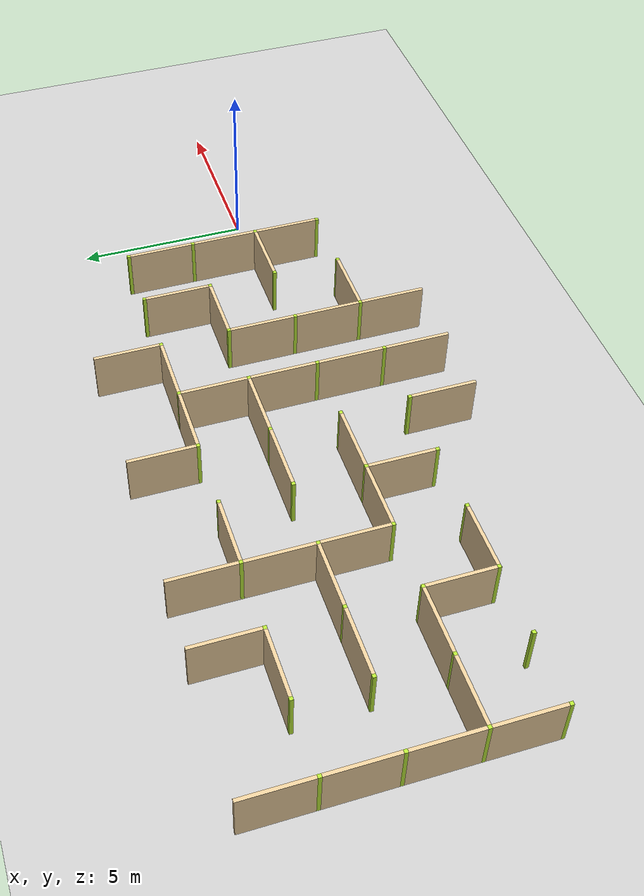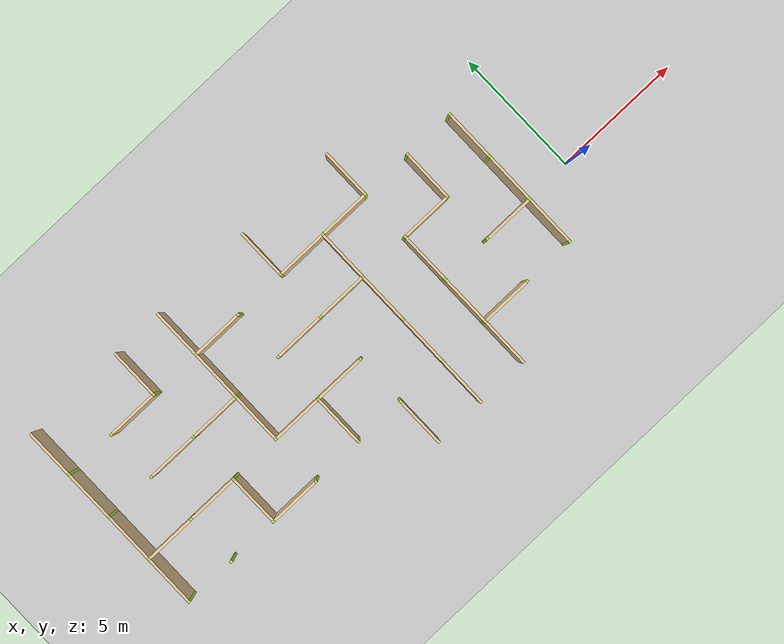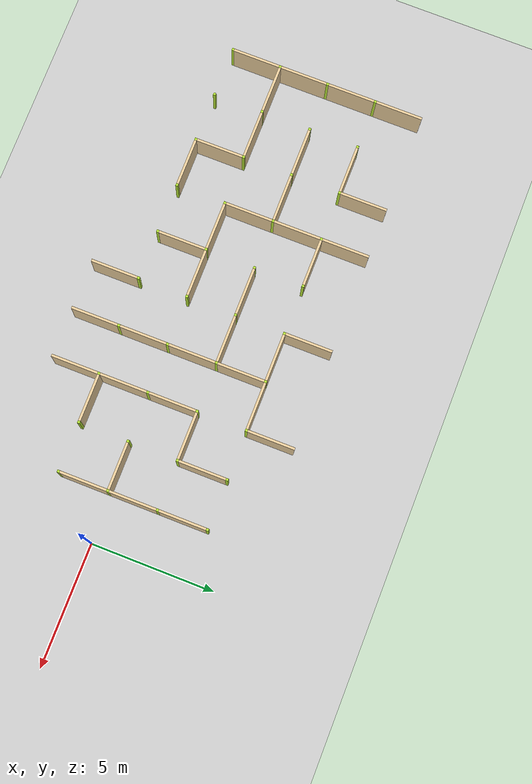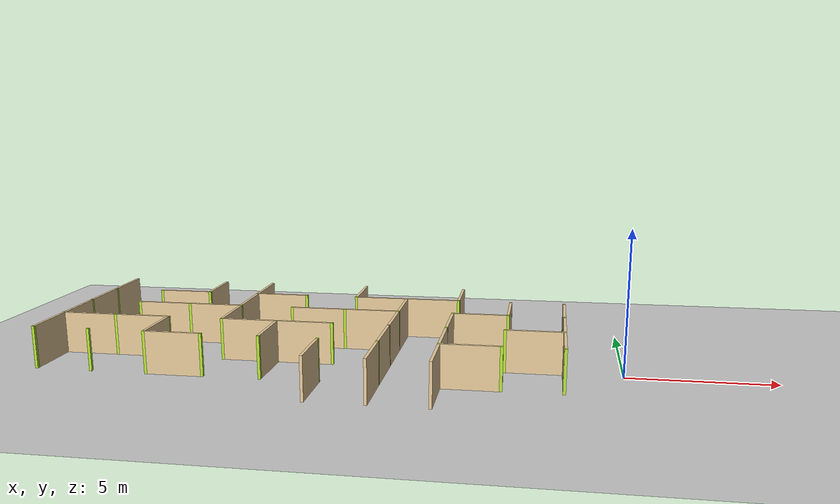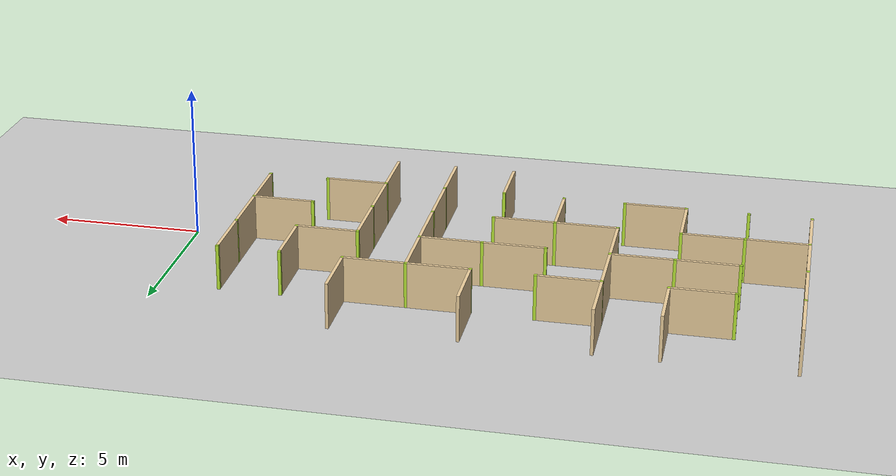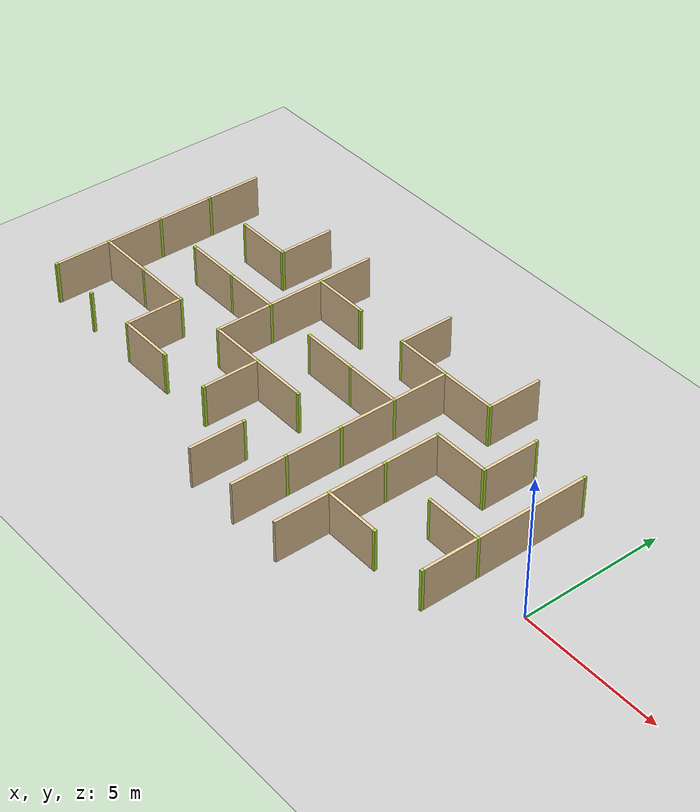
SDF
<sdf version="1.4">
 <world name="maze_world">
  <model name="ground">
   <static>true</static>
   <link name="ground_link">
    <collision name="collision1"><geometry><plane><normal>0 0 1</normal></plane></geometry></collision>
    <visual name="visual1"><geometry><plane><normal>0 0 1</normal><size>100 100</size></plane></geometry></visual>
   </link>
  </model>
  <model name="Untitled">
   <link name="Wall_0_7_v">
    <collision name="Wall_0_Collision">
     <geometry><box><size>1.9 0.1 1.5</size></box></geometry>
     <pose>0 0 0.75 0 -0 0</pose>
    </collision>
    <visual name="Wall_0_Visual">
     <pose>0 0 0.75 0 -0 0</pose>
     <geometry><box><size>1.9 0.1 1.5</size></box></geometry>
     <material>
      <script><uri>file://media/materials/scripts/gazebo.material</uri><name>Gazebo/Grey</name></script>
      <ambient>0.921569 0.807843 0.615686 1</ambient>
     </material>
     <meta><layer>0</layer></meta>
    </visual>
    <pose>-20 5.0 0 0 -0 1.5708</pose>
   </link>
   <link name="Wall_2_7_v">
    <collision name="Wall_0_Collision">
     <geometry><box><size>1.9 0.1 1.5</size></box></geometry>
     <pose>0 0 0.75 0 -0 0</pose>
    </collision>
    <visual name="Wall_0_Visual">
     <pose>0 0 0.75 0 -0 0</pose>
     <geometry><box><size>1.9 0.1 1.5</size></box></geometry>
     <material>
      <script><uri>file://media/materials/scripts/gazebo.material</uri><name>Gazebo/Grey</name></script>
      <ambient>0.921569 0.807843 0.615686 1</ambient>
     </material>
     <meta><layer>0</layer></meta>
    </visual>
    <pose>-16 5.0 0 0 -0 1.5708</pose>
   </link>
   <link name="Wall_3_7_v">
    <collision name="Wall_0_Collision">
     <geometry><box><size>1.9 0.1 1.5</size></box></geometry>
     <pose>0 0 0.75 0 -0 0</pose>
    </collision>
    <visual name="Wall_0_Visual">
     <pose>0 0 0.75 0 -0 0</pose>
     <geometry><box><size>1.9 0.1 1.5</size></box></geometry>
     <material>
      <script><uri>file://media/materials/scripts/gazebo.material</uri><name>Gazebo/Grey</name></script>
      <ambient>0.921569 0.807843 0.615686 1</ambient>
     </material>
     <meta><layer>0</layer></meta>
    </visual>
    <pose>-14 5.0 0 0 -0 1.5708</pose>
   </link>
   <link name="Wall_5_7_v">
    <collision name="Wall_0_Collision">
     <geometry><box><size>1.9 0.1 1.5</size></box></geometry>
     <pose>0 0 0.75 0 -0 0</pose>
    </collision>
    <visual name="Wall_0_Visual">
     <pose>0 0 0.75 0 -0 0</pose>
     <geometry><box><size>1.9 0.1 1.5</size></box></geometry>
     <material>
      <script><uri>file://media/materials/scripts/gazebo.material</uri><name>Gazebo/Grey</name></script>
      <ambient>0.921569 0.807843 0.615686 1</ambient>
     </material>
     <meta><layer>0</layer></meta>
    </visual>
    <pose>-10 5.0 0 0 -0 1.5708</pose>
   </link>
   <link name="Wall_7_7_v">
    <collision name="Wall_0_Collision">
     <geometry><box><size>1.9 0.1 1.5</size></box></geometry>
     <pose>0 0 0.75 0 -0 0</pose>
    </collision>
    <visual name="Wall_0_Visual">
     <pose>0 0 0.75 0 -0 0</pose>
     <geometry><box><size>1.9 0.1 1.5</size></box></geometry>
     <material>
      <script><uri>file://media/materials/scripts/gazebo.material</uri><name>Gazebo/Grey</name></script>
      <ambient>0.921569 0.807843 0.615686 1</ambient>
     </material>
     <meta><layer>0</layer></meta>
    </visual>
    <pose>-6 5.0 0 0 -0 1.5708</pose>
   </link>
   <link name="Wall_0_8_v">
    <collision name="Wall_0_Collision">
     <geometry><box><size>1.9 0.1 1.5</size></box></geometry>
     <pose>0 0 0.75 0 -0 0</pose>
    </collision>
    <visual name="Wall_0_Visual">
     <pose>0 0 0.75 0 -0 0</pose>
     <geometry><box><size>1.9 0.1 1.5</size></box></geometry>
     <material>
      <script><uri>file://media/materials/scripts/gazebo.material</uri><name>Gazebo/Grey</name></script>
      <ambient>0.921569 0.807843 0.615686 1</ambient>
     </material>
     <meta><layer>0</layer></meta>
    </visual>
    <pose>-20 3.0 0 0 -0 1.5708</pose>
   </link>
   <link name="Joint_-20_4">
    <collision name="Wall_2_Collision">
     <geometry><box><size>0.1 0.1 1.5</size></box></geometry>
     <pose>0 0 0.75 0 -0 0</pose>
    </collision>
    <visual name="Wall_2_Visual">
     <pose>0 0 0.75 0 -0 0</pose>
     <geometry><box><size>0.1 0.1 1.5</size></box></geometry>
     <material>
      <script><uri>file://media/materials/scripts/gazebo.material</uri><name>Gazebo/Grey</name></script>
      <ambient>0.721569 0.907843 0.215686 1</ambient>
     </material>
     <meta><layer>0</layer></meta>
    </visual>
    <pose>-20 4 0 0 -0 0</pose>
   </link>
   <link name="Wall_1_8_h">
    <collision name="Wall_0_Collision">
     <geometry><box><size>1.9 0.1 1.5</size></box></geometry>
     <pose>0 0 0.75 0 -0 0</pose>
    </collision>
    <visual name="Wall_0_Visual">
     <pose>0 0 0.75 0 -0 0</pose>
     <geometry><box><size>1.9 0.1 1.5</size></box></geometry>
     <material>
      <script><uri>file://media/materials/scripts/gazebo.material</uri><name>Gazebo/Grey</name></script>
      <ambient>0.921569 0.807843 0.615686 1</ambient>
     </material>
     <meta><layer>0</layer></meta>
    </visual>
    <pose>-17.0 4 0 0 -0 0</pose>
   </link>
   <link name="Joint_-18_4">
    <collision name="Wall_2_Collision">
     <geometry><box><size>0.1 0.1 1.5</size></box></geometry>
     <pose>0 0 0.75 0 -0 0</pose>
    </collision>
    <visual name="Wall_2_Visual">
     <pose>0 0 0.75 0 -0 0</pose>
     <geometry><box><size>0.1 0.1 1.5</size></box></geometry>
     <material>
      <script><uri>file://media/materials/scripts/gazebo.material</uri><name>Gazebo/Grey</name></script>
      <ambient>0.721569 0.907843 0.215686 1</ambient>
     </material>
     <meta><layer>0</layer></meta>
    </visual>
    <pose>-18 4 0 0 -0 0</pose>
   </link>
   <link name="Joint_-16_4">
    <collision name="Wall_2_Collision">
     <geometry><box><size>0.1 0.1 1.5</size></box></geometry>
     <pose>0 0 0.75 0 -0 0</pose>
    </collision>
    <visual name="Wall_2_Visual">
     <pose>0 0 0.75 0 -0 0</pose>
     <geometry><box><size>0.1 0.1 1.5</size></box></geometry>
     <material>
      <script><uri>file://media/materials/scripts/gazebo.material</uri><name>Gazebo/Grey</name></script>
      <ambient>0.721569 0.907843 0.215686 1</ambient>
     </material>
     <meta><layer>0</layer></meta>
    </visual>
    <pose>-16 4 0 0 -0 0</pose>
   </link>
   <link name="Wall_3_8_h">
    <collision name="Wall_0_Collision">
     <geometry><box><size>1.9 0.1 1.5</size></box></geometry>
     <pose>0 0 0.75 0 -0 0</pose>
    </collision>
    <visual name="Wall_0_Visual">
     <pose>0 0 0.75 0 -0 0</pose>
     <geometry><box><size>1.9 0.1 1.5</size></box></geometry>
     <material>
      <script><uri>file://media/materials/scripts/gazebo.material</uri><name>Gazebo/Grey</name></script>
      <ambient>0.921569 0.807843 0.615686 1</ambient>
     </material>
     <meta><layer>0</layer></meta>
    </visual>
    <pose>-13.0 4 0 0 -0 0</pose>
   </link>
   <link name="Wall_3_8_v">
    <collision name="Wall_0_Collision">
     <geometry><box><size>1.9 0.1 1.5</size></box></geometry>
     <pose>0 0 0.75 0 -0 0</pose>
    </collision>
    <visual name="Wall_0_Visual">
     <pose>0 0 0.75 0 -0 0</pose>
     <geometry><box><size>1.9 0.1 1.5</size></box></geometry>
     <material>
      <script><uri>file://media/materials/scripts/gazebo.material</uri><name>Gazebo/Grey</name></script>
      <ambient>0.921569 0.807843 0.615686 1</ambient>
     </material>
     <meta><layer>0</layer></meta>
    </visual>
    <pose>-14 3.0 0 0 -0 1.5708</pose>
   </link>
   <link name="Joint_-14_4">
    <collision name="Wall_2_Collision">
     <geometry><box><size>0.1 0.1 1.5</size></box></geometry>
     <pose>0 0 0.75 0 -0 0</pose>
    </collision>
    <visual name="Wall_2_Visual">
     <pose>0 0 0.75 0 -0 0</pose>
     <geometry><box><size>0.1 0.1 1.5</size></box></geometry>
     <material>
      <script><uri>file://media/materials/scripts/gazebo.material</uri><name>Gazebo/Grey</name></script>
      <ambient>0.721569 0.907843 0.215686 1</ambient>
     </material>
     <meta><layer>0</layer></meta>
    </visual>
    <pose>-14 4 0 0 -0 0</pose>
   </link>
   <link name="Joint_-12_4">
    <collision name="Wall_2_Collision">
     <geometry><box><size>0.1 0.1 1.5</size></box></geometry>
     <pose>0 0 0.75 0 -0 0</pose>
    </collision>
    <visual name="Wall_2_Visual">
     <pose>0 0 0.75 0 -0 0</pose>
     <geometry><box><size>0.1 0.1 1.5</size></box></geometry>
     <material>
      <script><uri>file://media/materials/scripts/gazebo.material</uri><name>Gazebo/Grey</name></script>
      <ambient>0.721569 0.907843 0.215686 1</ambient>
     </material>
     <meta><layer>0</layer></meta>
    </visual>
    <pose>-12 4 0 0 -0 0</pose>
   </link>
   <link name="Wall_5_8_h">
    <collision name="Wall_0_Collision">
     <geometry><box><size>1.9 0.1 1.5</size></box></geometry>
     <pose>0 0 0.75 0 -0 0</pose>
    </collision>
    <visual name="Wall_0_Visual">
     <pose>0 0 0.75 0 -0 0</pose>
     <geometry><box><size>1.9 0.1 1.5</size></box></geometry>
     <material>
      <script><uri>file://media/materials/scripts/gazebo.material</uri><name>Gazebo/Grey</name></script>
      <ambient>0.921569 0.807843 0.615686 1</ambient>
     </material>
     <meta><layer>0</layer></meta>
    </visual>
    <pose>-9.0 4 0 0 -0 0</pose>
   </link>
   <link name="Joint_-10_4">
    <collision name="Wall_2_Collision">
     <geometry><box><size>0.1 0.1 1.5</size></box></geometry>
     <pose>0 0 0.75 0 -0 0</pose>
    </collision>
    <visual name="Wall_2_Visual">
     <pose>0 0 0.75 0 -0 0</pose>
     <geometry><box><size>0.1 0.1 1.5</size></box></geometry>
     <material>
      <script><uri>file://media/materials/scripts/gazebo.material</uri><name>Gazebo/Grey</name></script>
      <ambient>0.721569 0.907843 0.215686 1</ambient>
     </material>
     <meta><layer>0</layer></meta>
    </visual>
    <pose>-10 4 0 0 -0 0</pose>
   </link>
   <link name="Wall_6_8_h">
    <collision name="Wall_0_Collision">
     <geometry><box><size>1.9 0.1 1.5</size></box></geometry>
     <pose>0 0 0.75 0 -0 0</pose>
    </collision>
    <visual name="Wall_0_Visual">
     <pose>0 0 0.75 0 -0 0</pose>
     <geometry><box><size>1.9 0.1 1.5</size></box></geometry>
     <material>
      <script><uri>file://media/materials/scripts/gazebo.material</uri><name>Gazebo/Grey</name></script>
      <ambient>0.921569 0.807843 0.615686 1</ambient>
     </material>
     <meta><layer>0</layer></meta>
    </visual>
    <pose>-7.0 4 0 0 -0 0</pose>
   </link>
   <link name="Wall_6_8_v">
    <collision name="Wall_0_Collision">
     <geometry><box><size>1.9 0.1 1.5</size></box></geometry>
     <pose>0 0 0.75 0 -0 0</pose>
    </collision>
    <visual name="Wall_0_Visual">
     <pose>0 0 0.75 0 -0 0</pose>
     <geometry><box><size>1.9 0.1 1.5</size></box></geometry>
     <material>
      <script><uri>file://media/materials/scripts/gazebo.material</uri><name>Gazebo/Grey</name></script>
      <ambient>0.921569 0.807843 0.615686 1</ambient>
     </material>
     <meta><layer>0</layer></meta>
    </visual>
    <pose>-8 3.0 0 0 -0 1.5708</pose>
   </link>
   <link name="Joint_-8_4">
    <collision name="Wall_2_Collision">
     <geometry><box><size>0.1 0.1 1.5</size></box></geometry>
     <pose>0 0 0.75 0 -0 0</pose>
    </collision>
    <visual name="Wall_2_Visual">
     <pose>0 0 0.75 0 -0 0</pose>
     <geometry><box><size>0.1 0.1 1.5</size></box></geometry>
     <material>
      <script><uri>file://media/materials/scripts/gazebo.material</uri><name>Gazebo/Grey</name></script>
      <ambient>0.721569 0.907843 0.215686 1</ambient>
     </material>
     <meta><layer>0</layer></meta>
    </visual>
    <pose>-8 4 0 0 -0 0</pose>
   </link>
   <link name="Joint_-6_4">
    <collision name="Wall_2_Collision">
     <geometry><box><size>0.1 0.1 1.5</size></box></geometry>
     <pose>0 0 0.75 0 -0 0</pose>
    </collision>
    <visual name="Wall_2_Visual">
     <pose>0 0 0.75 0 -0 0</pose>
     <geometry><box><size>0.1 0.1 1.5</size></box></geometry>
     <material>
      <script><uri>file://media/materials/scripts/gazebo.material</uri><name>Gazebo/Grey</name></script>
      <ambient>0.721569 0.907843 0.215686 1</ambient>
     </material>
     <meta><layer>0</layer></meta>
    </visual>
    <pose>-6 4 0 0 -0 0</pose>
   </link>
   <link name="Wall_8_8_v">
    <collision name="Wall_0_Collision">
     <geometry><box><size>1.9 0.1 1.5</size></box></geometry>
     <pose>0 0 0.75 0 -0 0</pose>
    </collision>
    <visual name="Wall_0_Visual">
     <pose>0 0 0.75 0 -0 0</pose>
     <geometry><box><size>1.9 0.1 1.5</size></box></geometry>
     <material>
      <script><uri>file://media/materials/scripts/gazebo.material</uri><name>Gazebo/Grey</name></script>
      <ambient>0.921569 0.807843 0.615686 1</ambient>
     </material>
     <meta><layer>0</layer></meta>
    </visual>
    <pose>-4 3.0 0 0 -0 1.5708</pose>
   </link>
   <link name="Joint_-4_4">
    <collision name="Wall_2_Collision">
     <geometry><box><size>0.1 0.1 1.5</size></box></geometry>
     <pose>0 0 0.75 0 -0 0</pose>
    </collision>
    <visual name="Wall_2_Visual">
     <pose>0 0 0.75 0 -0 0</pose>
     <geometry><box><size>0.1 0.1 1.5</size></box></geometry>
     <material>
      <script><uri>file://media/materials/scripts/gazebo.material</uri><name>Gazebo/Grey</name></script>
      <ambient>0.721569 0.907843 0.215686 1</ambient>
     </material>
     <meta><layer>0</layer></meta>
    </visual>
    <pose>-4 4 0 0 -0 0</pose>
   </link>
   <link name="Wall_9_8_v">
    <collision name="Wall_0_Collision">
     <geometry><box><size>1.9 0.1 1.5</size></box></geometry>
     <pose>0 0 0.75 0 -0 0</pose>
    </collision>
    <visual name="Wall_0_Visual">
     <pose>0 0 0.75 0 -0 0</pose>
     <geometry><box><size>1.9 0.1 1.5</size></box></geometry>
     <material>
      <script><uri>file://media/materials/scripts/gazebo.material</uri><name>Gazebo/Grey</name></script>
      <ambient>0.921569 0.807843 0.615686 1</ambient>
     </material>
     <meta><layer>0</layer></meta>
    </visual>
    <pose>-2 3.0 0 0 -0 1.5708</pose>
   </link>
   <link name="Joint_-2_4">
    <collision name="Wall_2_Collision">
     <geometry><box><size>0.1 0.1 1.5</size></box></geometry>
     <pose>0 0 0.75 0 -0 0</pose>
    </collision>
    <visual name="Wall_2_Visual">
     <pose>0 0 0.75 0 -0 0</pose>
     <geometry><box><size>0.1 0.1 1.5</size></box></geometry>
     <material>
      <script><uri>file://media/materials/scripts/gazebo.material</uri><name>Gazebo/Grey</name></script>
      <ambient>0.721569 0.907843 0.215686 1</ambient>
     </material>
     <meta><layer>0</layer></meta>
    </visual>
    <pose>-2 4 0 0 -0 0</pose>
   </link>
   <link name="Wall_0_9_v">
    <collision name="Wall_0_Collision">
     <geometry><box><size>1.9 0.1 1.5</size></box></geometry>
     <pose>0 0 0.75 0 -0 0</pose>
    </collision>
    <visual name="Wall_0_Visual">
     <pose>0 0 0.75 0 -0 0</pose>
     <geometry><box><size>1.9 0.1 1.5</size></box></geometry>
     <material>
      <script><uri>file://media/materials/scripts/gazebo.material</uri><name>Gazebo/Grey</name></script>
      <ambient>0.921569 0.807843 0.615686 1</ambient>
     </material>
     <meta><layer>0</layer></meta>
    </visual>
    <pose>-20 1.0 0 0 -0 1.5708</pose>
   </link>
   <link name="Joint_-20_2">
    <collision name="Wall_2_Collision">
     <geometry><box><size>0.1 0.1 1.5</size></box></geometry>
     <pose>0 0 0.75 0 -0 0</pose>
    </collision>
    <visual name="Wall_2_Visual">
     <pose>0 0 0.75 0 -0 0</pose>
     <geometry><box><size>0.1 0.1 1.5</size></box></geometry>
     <material>
      <script><uri>file://media/materials/scripts/gazebo.material</uri><name>Gazebo/Grey</name></script>
      <ambient>0.721569 0.907843 0.215686 1</ambient>
     </material>
     <meta><layer>0</layer></meta>
    </visual>
    <pose>-20 2 0 0 -0 0</pose>
   </link>
   <link name="Wall_1_9_h">
    <collision name="Wall_0_Collision">
     <geometry><box><size>1.9 0.1 1.5</size></box></geometry>
     <pose>0 0 0.75 0 -0 0</pose>
    </collision>
    <visual name="Wall_0_Visual">
     <pose>0 0 0.75 0 -0 0</pose>
     <geometry><box><size>1.9 0.1 1.5</size></box></geometry>
     <material>
      <script><uri>file://media/materials/scripts/gazebo.material</uri><name>Gazebo/Grey</name></script>
      <ambient>0.921569 0.807843 0.615686 1</ambient>
     </material>
     <meta><layer>0</layer></meta>
    </visual>
    <pose>-17.0 2 0 0 -0 0</pose>
   </link>
   <link name="Joint_-18_2">
    <collision name="Wall_2_Collision">
     <geometry><box><size>0.1 0.1 1.5</size></box></geometry>
     <pose>0 0 0.75 0 -0 0</pose>
    </collision>
    <visual name="Wall_2_Visual">
     <pose>0 0 0.75 0 -0 0</pose>
     <geometry><box><size>0.1 0.1 1.5</size></box></geometry>
     <material>
      <script><uri>file://media/materials/scripts/gazebo.material</uri><name>Gazebo/Grey</name></script>
      <ambient>0.721569 0.907843 0.215686 1</ambient>
     </material>
     <meta><layer>0</layer></meta>
    </visual>
    <pose>-18 2 0 0 -0 0</pose>
   </link>
   <link name="Wall_2_9_h">
    <collision name="Wall_0_Collision">
     <geometry><box><size>1.9 0.1 1.5</size></box></geometry>
     <pose>0 0 0.75 0 -0 0</pose>
    </collision>
    <visual name="Wall_0_Visual">
     <pose>0 0 0.75 0 -0 0</pose>
     <geometry><box><size>1.9 0.1 1.5</size></box></geometry>
     <material>
      <script><uri>file://media/materials/scripts/gazebo.material</uri><name>Gazebo/Grey</name></script>
      <ambient>0.921569 0.807843 0.615686 1</ambient>
     </material>
     <meta><layer>0</layer></meta>
    </visual>
    <pose>-15.0 2 0 0 -0 0</pose>
   </link>
   <link name="Joint_-16_2">
    <collision name="Wall_2_Collision">
     <geometry><box><size>0.1 0.1 1.5</size></box></geometry>
     <pose>0 0 0.75 0 -0 0</pose>
    </collision>
    <visual name="Wall_2_Visual">
     <pose>0 0 0.75 0 -0 0</pose>
     <geometry><box><size>0.1 0.1 1.5</size></box></geometry>
     <material>
      <script><uri>file://media/materials/scripts/gazebo.material</uri><name>Gazebo/Grey</name></script>
      <ambient>0.721569 0.907843 0.215686 1</ambient>
     </material>
     <meta><layer>0</layer></meta>
    </visual>
    <pose>-16 2 0 0 -0 0</pose>
   </link>
   <link name="Wall_3_9_v">
    <collision name="Wall_0_Collision">
     <geometry><box><size>1.9 0.1 1.5</size></box></geometry>
     <pose>0 0 0.75 0 -0 0</pose>
    </collision>
    <visual name="Wall_0_Visual">
     <pose>0 0 0.75 0 -0 0</pose>
     <geometry><box><size>1.9 0.1 1.5</size></box></geometry>
     <material>
      <script><uri>file://media/materials/scripts/gazebo.material</uri><name>Gazebo/Grey</name></script>
      <ambient>0.921569 0.807843 0.615686 1</ambient>
     </material>
     <meta><layer>0</layer></meta>
    </visual>
    <pose>-14 1.0 0 0 -0 1.5708</pose>
   </link>
   <link name="Joint_-14_2">
    <collision name="Wall_2_Collision">
     <geometry><box><size>0.1 0.1 1.5</size></box></geometry>
     <pose>0 0 0.75 0 -0 0</pose>
    </collision>
    <visual name="Wall_2_Visual">
     <pose>0 0 0.75 0 -0 0</pose>
     <geometry><box><size>0.1 0.1 1.5</size></box></geometry>
     <material>
      <script><uri>file://media/materials/scripts/gazebo.material</uri><name>Gazebo/Grey</name></script>
      <ambient>0.721569 0.907843 0.215686 1</ambient>
     </material>
     <meta><layer>0</layer></meta>
    </visual>
    <pose>-14 2 0 0 -0 0</pose>
   </link>
   <link name="Wall_4_9_h">
    <collision name="Wall_0_Collision">
     <geometry><box><size>1.9 0.1 1.5</size></box></geometry>
     <pose>0 0 0.75 0 -0 0</pose>
    </collision>
    <visual name="Wall_0_Visual">
     <pose>0 0 0.75 0 -0 0</pose>
     <geometry><box><size>1.9 0.1 1.5</size></box></geometry>
     <material>
      <script><uri>file://media/materials/scripts/gazebo.material</uri><name>Gazebo/Grey</name></script>
      <ambient>0.921569 0.807843 0.615686 1</ambient>
     </material>
     <meta><layer>0</layer></meta>
    </visual>
    <pose>-11.0 2 0 0 -0 0</pose>
   </link>
   <link name="Joint_-12_2">
    <collision name="Wall_2_Collision">
     <geometry><box><size>0.1 0.1 1.5</size></box></geometry>
     <pose>0 0 0.75 0 -0 0</pose>
    </collision>
    <visual name="Wall_2_Visual">
     <pose>0 0 0.75 0 -0 0</pose>
     <geometry><box><size>0.1 0.1 1.5</size></box></geometry>
     <material>
      <script><uri>file://media/materials/scripts/gazebo.material</uri><name>Gazebo/Grey</name></script>
      <ambient>0.721569 0.907843 0.215686 1</ambient>
     </material>
     <meta><layer>0</layer></meta>
    </visual>
    <pose>-12 2 0 0 -0 0</pose>
   </link>
   <link name="Wall_5_9_h">
    <collision name="Wall_0_Collision">
     <geometry><box><size>1.9 0.1 1.5</size></box></geometry>
     <pose>0 0 0.75 0 -0 0</pose>
    </collision>
    <visual name="Wall_0_Visual">
     <pose>0 0 0.75 0 -0 0</pose>
     <geometry><box><size>1.9 0.1 1.5</size></box></geometry>
     <material>
      <script><uri>file://media/materials/scripts/gazebo.material</uri><name>Gazebo/Grey</name></script>
      <ambient>0.921569 0.807843 0.615686 1</ambient>
     </material>
     <meta><layer>0</layer></meta>
    </visual>
    <pose>-9.0 2 0 0 -0 0</pose>
   </link>
   <link name="Joint_-10_2">
    <collision name="Wall_2_Collision">
     <geometry><box><size>0.1 0.1 1.5</size></box></geometry>
     <pose>0 0 0.75 0 -0 0</pose>
    </collision>
    <visual name="Wall_2_Visual">
     <pose>0 0 0.75 0 -0 0</pose>
     <geometry><box><size>0.1 0.1 1.5</size></box></geometry>
     <material>
      <script><uri>file://media/materials/scripts/gazebo.material</uri><name>Gazebo/Grey</name></script>
      <ambient>0.721569 0.907843 0.215686 1</ambient>
     </material>
     <meta><layer>0</layer></meta>
    </visual>
    <pose>-10 2 0 0 -0 0</pose>
   </link>
   <link name="Wall_6_9_v">
    <collision name="Wall_0_Collision">
     <geometry><box><size>1.9 0.1 1.5</size></box></geometry>
     <pose>0 0 0.75 0 -0 0</pose>
    </collision>
    <visual name="Wall_0_Visual">
     <pose>0 0 0.75 0 -0 0</pose>
     <geometry><box><size>1.9 0.1 1.5</size></box></geometry>
     <material>
      <script><uri>file://media/materials/scripts/gazebo.material</uri><name>Gazebo/Grey</name></script>
      <ambient>0.921569 0.807843 0.615686 1</ambient>
     </material>
     <meta><layer>0</layer></meta>
    </visual>
    <pose>-8 1.0 0 0 -0 1.5708</pose>
   </link>
   <link name="Joint_-8_2">
    <collision name="Wall_2_Collision">
     <geometry><box><size>0.1 0.1 1.5</size></box></geometry>
     <pose>0 0 0.75 0 -0 0</pose>
    </collision>
    <visual name="Wall_2_Visual">
     <pose>0 0 0.75 0 -0 0</pose>
     <geometry><box><size>0.1 0.1 1.5</size></box></geometry>
     <material>
      <script><uri>file://media/materials/scripts/gazebo.material</uri><name>Gazebo/Grey</name></script>
      <ambient>0.721569 0.907843 0.215686 1</ambient>
     </material>
     <meta><layer>0</layer></meta>
    </visual>
    <pose>-8 2 0 0 -0 0</pose>
   </link>
   <link name="Wall_7_9_h">
    <collision name="Wall_0_Collision">
     <geometry><box><size>1.9 0.1 1.5</size></box></geometry>
     <pose>0 0 0.75 0 -0 0</pose>
    </collision>
    <visual name="Wall_0_Visual">
     <pose>0 0 0.75 0 -0 0</pose>
     <geometry><box><size>1.9 0.1 1.5</size></box></geometry>
     <material>
      <script><uri>file://media/materials/scripts/gazebo.material</uri><name>Gazebo/Grey</name></script>
      <ambient>0.921569 0.807843 0.615686 1</ambient>
     </material>
     <meta><layer>0</layer></meta>
    </visual>
    <pose>-5.0 2 0 0 -0 0</pose>
   </link>
   <link name="Wall_7_9_v">
    <collision name="Wall_0_Collision">
     <geometry><box><size>1.9 0.1 1.5</size></box></geometry>
     <pose>0 0 0.75 0 -0 0</pose>
    </collision>
    <visual name="Wall_0_Visual">
     <pose>0 0 0.75 0 -0 0</pose>
     <geometry><box><size>1.9 0.1 1.5</size></box></geometry>
     <material>
      <script><uri>file://media/materials/scripts/gazebo.material</uri><name>Gazebo/Grey</name></script>
      <ambient>0.921569 0.807843 0.615686 1</ambient>
     </material>
     <meta><layer>0</layer></meta>
    </visual>
    <pose>-6 1.0 0 0 -0 1.5708</pose>
   </link>
   <link name="Joint_-6_2">
    <collision name="Wall_2_Collision">
     <geometry><box><size>0.1 0.1 1.5</size></box></geometry>
     <pose>0 0 0.75 0 -0 0</pose>
    </collision>
    <visual name="Wall_2_Visual">
     <pose>0 0 0.75 0 -0 0</pose>
     <geometry><box><size>0.1 0.1 1.5</size></box></geometry>
     <material>
      <script><uri>file://media/materials/scripts/gazebo.material</uri><name>Gazebo/Grey</name></script>
      <ambient>0.721569 0.907843 0.215686 1</ambient>
     </material>
     <meta><layer>0</layer></meta>
    </visual>
    <pose>-6 2 0 0 -0 0</pose>
   </link>
   <link name="Joint_-4_2">
    <collision name="Wall_2_Collision">
     <geometry><box><size>0.1 0.1 1.5</size></box></geometry>
     <pose>0 0 0.75 0 -0 0</pose>
    </collision>
    <visual name="Wall_2_Visual">
     <pose>0 0 0.75 0 -0 0</pose>
     <geometry><box><size>0.1 0.1 1.5</size></box></geometry>
     <material>
      <script><uri>file://media/materials/scripts/gazebo.material</uri><name>Gazebo/Grey</name></script>
      <ambient>0.721569 0.907843 0.215686 1</ambient>
     </material>
     <meta><layer>0</layer></meta>
    </visual>
    <pose>-4 2 0 0 -0 0</pose>
   </link>
   <link name="Wall_9_9_v">
    <collision name="Wall_0_Collision">
     <geometry><box><size>1.9 0.1 1.5</size></box></geometry>
     <pose>0 0 0.75 0 -0 0</pose>
    </collision>
    <visual name="Wall_0_Visual">
     <pose>0 0 0.75 0 -0 0</pose>
     <geometry><box><size>1.9 0.1 1.5</size></box></geometry>
     <material>
      <script><uri>file://media/materials/scripts/gazebo.material</uri><name>Gazebo/Grey</name></script>
      <ambient>0.921569 0.807843 0.615686 1</ambient>
     </material>
     <meta><layer>0</layer></meta>
    </visual>
    <pose>-2 1.0 0 0 -0 1.5708</pose>
   </link>
   <link name="Joint_-2_2">
    <collision name="Wall_2_Collision">
     <geometry><box><size>0.1 0.1 1.5</size></box></geometry>
     <pose>0 0 0.75 0 -0 0</pose>
    </collision>
    <visual name="Wall_2_Visual">
     <pose>0 0 0.75 0 -0 0</pose>
     <geometry><box><size>0.1 0.1 1.5</size></box></geometry>
     <material>
      <script><uri>file://media/materials/scripts/gazebo.material</uri><name>Gazebo/Grey</name></script>
      <ambient>0.721569 0.907843 0.215686 1</ambient>
     </material>
     <meta><layer>0</layer></meta>
    </visual>
    <pose>-2 2 0 0 -0 0</pose>
   </link>
   <link name="Wall_0_10_h">
    <collision name="Wall_0_Collision">
     <geometry><box><size>1.9 0.1 1.5</size></box></geometry>
     <pose>0 0 0.75 0 -0 0</pose>
    </collision>
    <visual name="Wall_0_Visual">
     <pose>0 0 0.75 0 -0 0</pose>
     <geometry><box><size>1.9 0.1 1.5</size></box></geometry>
     <material>
      <script><uri>file://media/materials/scripts/gazebo.material</uri><name>Gazebo/Grey</name></script>
      <ambient>0.921569 0.807843 0.615686 1</ambient>
     </material>
     <meta><layer>0</layer></meta>
    </visual>
    <pose>-19.0 0 0 0 -0 0</pose>
   </link>
   <link name="Wall_0_10_v">
    <collision name="Wall_0_Collision">
     <geometry><box><size>1.9 0.1 1.5</size></box></geometry>
     <pose>0 0 0.75 0 -0 0</pose>
    </collision>
    <visual name="Wall_0_Visual">
     <pose>0 0 0.75 0 -0 0</pose>
     <geometry><box><size>1.9 0.1 1.5</size></box></geometry>
     <material>
      <script><uri>file://media/materials/scripts/gazebo.material</uri><name>Gazebo/Grey</name></script>
      <ambient>0.921569 0.807843 0.615686 1</ambient>
     </material>
     <meta><layer>0</layer></meta>
    </visual>
    <pose>-20 -1.0 0 0 -0 1.5708</pose>
   </link>
   <link name="Joint_-20_0">
    <collision name="Wall_2_Collision">
     <geometry><box><size>0.1 0.1 1.5</size></box></geometry>
     <pose>0 0 0.75 0 -0 0</pose>
    </collision>
    <visual name="Wall_2_Visual">
     <pose>0 0 0.75 0 -0 0</pose>
     <geometry><box><size>0.1 0.1 1.5</size></box></geometry>
     <material>
      <script><uri>file://media/materials/scripts/gazebo.material</uri><name>Gazebo/Grey</name></script>
      <ambient>0.721569 0.907843 0.215686 1</ambient>
     </material>
     <meta><layer>0</layer></meta>
    </visual>
    <pose>-20 0 0 0 -0 0</pose>
   </link>
   <link name="Wall_1_10_h">
    <collision name="Wall_0_Collision">
     <geometry><box><size>1.9 0.1 1.5</size></box></geometry>
     <pose>0 0 0.75 0 -0 0</pose>
    </collision>
    <visual name="Wall_0_Visual">
     <pose>0 0 0.75 0 -0 0</pose>
     <geometry><box><size>1.9 0.1 1.5</size></box></geometry>
     <material>
      <script><uri>file://media/materials/scripts/gazebo.material</uri><name>Gazebo/Grey</name></script>
      <ambient>0.921569 0.807843 0.615686 1</ambient>
     </material>
     <meta><layer>0</layer></meta>
    </visual>
    <pose>-17.0 0 0 0 -0 0</pose>
   </link>
   <link name="Joint_-18_0">
    <collision name="Wall_2_Collision">
     <geometry><box><size>0.1 0.1 1.5</size></box></geometry>
     <pose>0 0 0.75 0 -0 0</pose>
    </collision>
    <visual name="Wall_2_Visual">
     <pose>0 0 0.75 0 -0 0</pose>
     <geometry><box><size>0.1 0.1 1.5</size></box></geometry>
     <material>
      <script><uri>file://media/materials/scripts/gazebo.material</uri><name>Gazebo/Grey</name></script>
      <ambient>0.721569 0.907843 0.215686 1</ambient>
     </material>
     <meta><layer>0</layer></meta>
    </visual>
    <pose>-18 0 0 0 -0 0</pose>
   </link>
   <link name="Wall_2_10_v">
    <collision name="Wall_0_Collision">
     <geometry><box><size>1.9 0.1 1.5</size></box></geometry>
     <pose>0 0 0.75 0 -0 0</pose>
    </collision>
    <visual name="Wall_0_Visual">
     <pose>0 0 0.75 0 -0 0</pose>
     <geometry><box><size>1.9 0.1 1.5</size></box></geometry>
     <material>
      <script><uri>file://media/materials/scripts/gazebo.material</uri><name>Gazebo/Grey</name></script>
      <ambient>0.921569 0.807843 0.615686 1</ambient>
     </material>
     <meta><layer>0</layer></meta>
    </visual>
    <pose>-16 -1.0 0 0 -0 1.5708</pose>
   </link>
   <link name="Joint_-16_0">
    <collision name="Wall_2_Collision">
     <geometry><box><size>0.1 0.1 1.5</size></box></geometry>
     <pose>0 0 0.75 0 -0 0</pose>
    </collision>
    <visual name="Wall_2_Visual">
     <pose>0 0 0.75 0 -0 0</pose>
     <geometry><box><size>0.1 0.1 1.5</size></box></geometry>
     <material>
      <script><uri>file://media/materials/scripts/gazebo.material</uri><name>Gazebo/Grey</name></script>
      <ambient>0.721569 0.907843 0.215686 1</ambient>
     </material>
     <meta><layer>0</layer></meta>
    </visual>
    <pose>-16 0 0 0 -0 0</pose>
   </link>
   <link name="Wall_3_10_h">
    <collision name="Wall_0_Collision">
     <geometry><box><size>1.9 0.1 1.5</size></box></geometry>
     <pose>0 0 0.75 0 -0 0</pose>
    </collision>
    <visual name="Wall_0_Visual">
     <pose>0 0 0.75 0 -0 0</pose>
     <geometry><box><size>1.9 0.1 1.5</size></box></geometry>
     <material>
      <script><uri>file://media/materials/scripts/gazebo.material</uri><name>Gazebo/Grey</name></script>
      <ambient>0.921569 0.807843 0.615686 1</ambient>
     </material>
     <meta><layer>0</layer></meta>
    </visual>
    <pose>-13.0 0 0 0 -0 0</pose>
   </link>
   <link name="Joint_-14_0">
    <collision name="Wall_2_Collision">
     <geometry><box><size>0.1 0.1 1.5</size></box></geometry>
     <pose>0 0 0.75 0 -0 0</pose>
    </collision>
    <visual name="Wall_2_Visual">
     <pose>0 0 0.75 0 -0 0</pose>
     <geometry><box><size>0.1 0.1 1.5</size></box></geometry>
     <material>
      <script><uri>file://media/materials/scripts/gazebo.material</uri><name>Gazebo/Grey</name></script>
      <ambient>0.721569 0.907843 0.215686 1</ambient>
     </material>
     <meta><layer>0</layer></meta>
    </visual>
    <pose>-14 0 0 0 -0 0</pose>
   </link>
   <link name="Wall_4_10_h">
    <collision name="Wall_0_Collision">
     <geometry><box><size>1.9 0.1 1.5</size></box></geometry>
     <pose>0 0 0.75 0 -0 0</pose>
    </collision>
    <visual name="Wall_0_Visual">
     <pose>0 0 0.75 0 -0 0</pose>
     <geometry><box><size>1.9 0.1 1.5</size></box></geometry>
     <material>
      <script><uri>file://media/materials/scripts/gazebo.material</uri><name>Gazebo/Grey</name></script>
      <ambient>0.921569 0.807843 0.615686 1</ambient>
     </material>
     <meta><layer>0</layer></meta>
    </visual>
    <pose>-11.0 0 0 0 -0 0</pose>
   </link>
   <link name="Wall_4_10_v">
    <collision name="Wall_0_Collision">
     <geometry><box><size>1.9 0.1 1.5</size></box></geometry>
     <pose>0 0 0.75 0 -0 0</pose>
    </collision>
    <visual name="Wall_0_Visual">
     <pose>0 0 0.75 0 -0 0</pose>
     <geometry><box><size>1.9 0.1 1.5</size></box></geometry>
     <material>
      <script><uri>file://media/materials/scripts/gazebo.material</uri><name>Gazebo/Grey</name></script>
      <ambient>0.921569 0.807843 0.615686 1</ambient>
     </material>
     <meta><layer>0</layer></meta>
    </visual>
    <pose>-12 -1.0 0 0 -0 1.5708</pose>
   </link>
   <link name="Joint_-12_0">
    <collision name="Wall_2_Collision">
     <geometry><box><size>0.1 0.1 1.5</size></box></geometry>
     <pose>0 0 0.75 0 -0 0</pose>
    </collision>
    <visual name="Wall_2_Visual">
     <pose>0 0 0.75 0 -0 0</pose>
     <geometry><box><size>0.1 0.1 1.5</size></box></geometry>
     <material>
      <script><uri>file://media/materials/scripts/gazebo.material</uri><name>Gazebo/Grey</name></script>
      <ambient>0.721569 0.907843 0.215686 1</ambient>
     </material>
     <meta><layer>0</layer></meta>
    </visual>
    <pose>-12 0 0 0 -0 0</pose>
   </link>
   <link name="Joint_-10_0">
    <collision name="Wall_2_Collision">
     <geometry><box><size>0.1 0.1 1.5</size></box></geometry>
     <pose>0 0 0.75 0 -0 0</pose>
    </collision>
    <visual name="Wall_2_Visual">
     <pose>0 0 0.75 0 -0 0</pose>
     <geometry><box><size>0.1 0.1 1.5</size></box></geometry>
     <material>
      <script><uri>file://media/materials/scripts/gazebo.material</uri><name>Gazebo/Grey</name></script>
      <ambient>0.721569 0.907843 0.215686 1</ambient>
     </material>
     <meta><layer>0</layer></meta>
    </visual>
    <pose>-10 0 0 0 -0 0</pose>
   </link>
   <link name="Wall_6_10_v">
    <collision name="Wall_0_Collision">
     <geometry><box><size>1.9 0.1 1.5</size></box></geometry>
     <pose>0 0 0.75 0 -0 0</pose>
    </collision>
    <visual name="Wall_0_Visual">
     <pose>0 0 0.75 0 -0 0</pose>
     <geometry><box><size>1.9 0.1 1.5</size></box></geometry>
     <material>
      <script><uri>file://media/materials/scripts/gazebo.material</uri><name>Gazebo/Grey</name></script>
      <ambient>0.921569 0.807843 0.615686 1</ambient>
     </material>
     <meta><layer>0</layer></meta>
    </visual>
    <pose>-8 -1.0 0 0 -0 1.5708</pose>
   </link>
   <link name="Joint_-8_0">
    <collision name="Wall_2_Collision">
     <geometry><box><size>0.1 0.1 1.5</size></box></geometry>
     <pose>0 0 0.75 0 -0 0</pose>
    </collision>
    <visual name="Wall_2_Visual">
     <pose>0 0 0.75 0 -0 0</pose>
     <geometry><box><size>0.1 0.1 1.5</size></box></geometry>
     <material>
      <script><uri>file://media/materials/scripts/gazebo.material</uri><name>Gazebo/Grey</name></script>
      <ambient>0.721569 0.907843 0.215686 1</ambient>
     </material>
     <meta><layer>0</layer></meta>
    </visual>
    <pose>-8 0 0 0 -0 0</pose>
   </link>
   <link name="Wall_7_10_v">
    <collision name="Wall_0_Collision">
     <geometry><box><size>1.9 0.1 1.5</size></box></geometry>
     <pose>0 0 0.75 0 -0 0</pose>
    </collision>
    <visual name="Wall_0_Visual">
     <pose>0 0 0.75 0 -0 0</pose>
     <geometry><box><size>1.9 0.1 1.5</size></box></geometry>
     <material>
      <script><uri>file://media/materials/scripts/gazebo.material</uri><name>Gazebo/Grey</name></script>
      <ambient>0.921569 0.807843 0.615686 1</ambient>
     </material>
     <meta><layer>0</layer></meta>
    </visual>
    <pose>-6 -1.0 0 0 -0 1.5708</pose>
   </link>
   <link name="Joint_-6_0">
    <collision name="Wall_2_Collision">
     <geometry><box><size>0.1 0.1 1.5</size></box></geometry>
     <pose>0 0 0.75 0 -0 0</pose>
    </collision>
    <visual name="Wall_2_Visual">
     <pose>0 0 0.75 0 -0 0</pose>
     <geometry><box><size>0.1 0.1 1.5</size></box></geometry>
     <material>
      <script><uri>file://media/materials/scripts/gazebo.material</uri><name>Gazebo/Grey</name></script>
      <ambient>0.721569 0.907843 0.215686 1</ambient>
     </material>
     <meta><layer>0</layer></meta>
    </visual>
    <pose>-6 0 0 0 -0 0</pose>
   </link>
   <link name="Wall_8_10_h">
    <collision name="Wall_0_Collision">
     <geometry><box><size>1.9 0.1 1.5</size></box></geometry>
     <pose>0 0 0.75 0 -0 0</pose>
    </collision>
    <visual name="Wall_0_Visual">
     <pose>0 0 0.75 0 -0 0</pose>
     <geometry><box><size>1.9 0.1 1.5</size></box></geometry>
     <material>
      <script><uri>file://media/materials/scripts/gazebo.material</uri><name>Gazebo/Grey</name></script>
      <ambient>0.921569 0.807843 0.615686 1</ambient>
     </material>
     <meta><layer>0</layer></meta>
    </visual>
    <pose>-3.0 0 0 0 -0 0</pose>
   </link>
   <link name="Joint_-4_0">
    <collision name="Wall_2_Collision">
     <geometry><box><size>0.1 0.1 1.5</size></box></geometry>
     <pose>0 0 0.75 0 -0 0</pose>
    </collision>
    <visual name="Wall_2_Visual">
     <pose>0 0 0.75 0 -0 0</pose>
     <geometry><box><size>0.1 0.1 1.5</size></box></geometry>
     <material>
      <script><uri>file://media/materials/scripts/gazebo.material</uri><name>Gazebo/Grey</name></script>
      <ambient>0.721569 0.907843 0.215686 1</ambient>
     </material>
     <meta><layer>0</layer></meta>
    </visual>
    <pose>-4 0 0 0 -0 0</pose>
   </link>
   <link name="Wall_9_10_v">
    <collision name="Wall_0_Collision">
     <geometry><box><size>1.9 0.1 1.5</size></box></geometry>
     <pose>0 0 0.75 0 -0 0</pose>
    </collision>
    <visual name="Wall_0_Visual">
     <pose>0 0 0.75 0 -0 0</pose>
     <geometry><box><size>1.9 0.1 1.5</size></box></geometry>
     <material>
      <script><uri>file://media/materials/scripts/gazebo.material</uri><name>Gazebo/Grey</name></script>
      <ambient>0.921569 0.807843 0.615686 1</ambient>
     </material>
     <meta><layer>0</layer></meta>
    </visual>
    <pose>-2 -1.0 0 0 -0 1.5708</pose>
   </link>
   <link name="Joint_-2_0">
    <collision name="Wall_2_Collision">
     <geometry><box><size>0.1 0.1 1.5</size></box></geometry>
     <pose>0 0 0.75 0 -0 0</pose>
    </collision>
    <visual name="Wall_2_Visual">
     <pose>0 0 0.75 0 -0 0</pose>
     <geometry><box><size>0.1 0.1 1.5</size></box></geometry>
     <material>
      <script><uri>file://media/materials/scripts/gazebo.material</uri><name>Gazebo/Grey</name></script>
      <ambient>0.721569 0.907843 0.215686 1</ambient>
     </material>
     <meta><layer>0</layer></meta>
    </visual>
    <pose>-2 0 0 0 -0 0</pose>
   </link>
   <link name="Joint_-20_-2">
    <collision name="Wall_2_Collision">
     <geometry><box><size>0.1 0.1 1.5</size></box></geometry>
     <pose>0 0 0.75 0 -0 0</pose>
    </collision>
    <visual name="Wall_2_Visual">
     <pose>0 0 0.75 0 -0 0</pose>
     <geometry><box><size>0.1 0.1 1.5</size></box></geometry>
     <material>
      <script><uri>file://media/materials/scripts/gazebo.material</uri><name>Gazebo/Grey</name></script>
      <ambient>0.721569 0.907843 0.215686 1</ambient>
     </material>
     <meta><layer>0</layer></meta>
    </visual>
    <pose>-20 -2 0 0 -0 0</pose>
   </link>
   <link name="Joint_-18_-2">
    <collision name="Wall_2_Collision">
     <geometry><box><size>0.1 0.1 1.5</size></box></geometry>
     <pose>0 0 0.75 0 -0 0</pose>
    </collision>
    <visual name="Wall_2_Visual">
     <pose>0 0 0.75 0 -0 0</pose>
     <geometry><box><size>0.1 0.1 1.5</size></box></geometry>
     <material>
      <script><uri>file://media/materials/scripts/gazebo.material</uri><name>Gazebo/Grey</name></script>
      <ambient>0.721569 0.907843 0.215686 1</ambient>
     </material>
     <meta><layer>0</layer></meta>
    </visual>
    <pose>-18 -2 0 0 -0 0</pose>
   </link>
   <link name="Wall_2_11_h">
    <collision name="Wall_0_Collision">
     <geometry><box><size>1.9 0.1 1.5</size></box></geometry>
     <pose>0 0 0.75 0 -0 0</pose>
    </collision>
    <visual name="Wall_0_Visual">
     <pose>0 0 0.75 0 -0 0</pose>
     <geometry><box><size>1.9 0.1 1.5</size></box></geometry>
     <material>
      <script><uri>file://media/materials/scripts/gazebo.material</uri><name>Gazebo/Grey</name></script>
      <ambient>0.921569 0.807843 0.615686 1</ambient>
     </material>
     <meta><layer>0</layer></meta>
    </visual>
    <pose>-15.0 -2 0 0 -0 0</pose>
   </link>
   <link name="Joint_-16_-2">
    <collision name="Wall_2_Collision">
     <geometry><box><size>0.1 0.1 1.5</size></box></geometry>
     <pose>0 0 0.75 0 -0 0</pose>
    </collision>
    <visual name="Wall_2_Visual">
     <pose>0 0 0.75 0 -0 0</pose>
     <geometry><box><size>0.1 0.1 1.5</size></box></geometry>
     <material>
      <script><uri>file://media/materials/scripts/gazebo.material</uri><name>Gazebo/Grey</name></script>
      <ambient>0.721569 0.907843 0.215686 1</ambient>
     </material>
     <meta><layer>0</layer></meta>
    </visual>
    <pose>-16 -2 0 0 -0 0</pose>
   </link>
   <link name="Joint_-14_-2">
    <collision name="Wall_2_Collision">
     <geometry><box><size>0.1 0.1 1.5</size></box></geometry>
     <pose>0 0 0.75 0 -0 0</pose>
    </collision>
    <visual name="Wall_2_Visual">
     <pose>0 0 0.75 0 -0 0</pose>
     <geometry><box><size>0.1 0.1 1.5</size></box></geometry>
     <material>
      <script><uri>file://media/materials/scripts/gazebo.material</uri><name>Gazebo/Grey</name></script>
      <ambient>0.721569 0.907843 0.215686 1</ambient>
     </material>
     <meta><layer>0</layer></meta>
    </visual>
    <pose>-14 -2 0 0 -0 0</pose>
   </link>
   <link name="Joint_-12_-2">
    <collision name="Wall_2_Collision">
     <geometry><box><size>0.1 0.1 1.5</size></box></geometry>
     <pose>0 0 0.75 0 -0 0</pose>
    </collision>
    <visual name="Wall_2_Visual">
     <pose>0 0 0.75 0 -0 0</pose>
     <geometry><box><size>0.1 0.1 1.5</size></box></geometry>
     <material>
      <script><uri>file://media/materials/scripts/gazebo.material</uri><name>Gazebo/Grey</name></script>
      <ambient>0.721569 0.907843 0.215686 1</ambient>
     </material>
     <meta><layer>0</layer></meta>
    </visual>
    <pose>-12 -2 0 0 -0 0</pose>
   </link>
   <link name="Wall_5_11_v">
    <collision name="Wall_0_Collision">
     <geometry><box><size>1.9 0.1 1.5</size></box></geometry>
     <pose>0 0 0.75 0 -0 0</pose>
    </collision>
    <visual name="Wall_0_Visual">
     <pose>0 0 0.75 0 -0 0</pose>
     <geometry><box><size>1.9 0.1 1.5</size></box></geometry>
     <material>
      <script><uri>file://media/materials/scripts/gazebo.material</uri><name>Gazebo/Grey</name></script>
      <ambient>0.921569 0.807843 0.615686 1</ambient>
     </material>
     <meta><layer>0</layer></meta>
    </visual>
    <pose>-10 -3.0 0 0 -0 1.5708</pose>
   </link>
   <link name="Joint_-10_-2">
    <collision name="Wall_2_Collision">
     <geometry><box><size>0.1 0.1 1.5</size></box></geometry>
     <pose>0 0 0.75 0 -0 0</pose>
    </collision>
    <visual name="Wall_2_Visual">
     <pose>0 0 0.75 0 -0 0</pose>
     <geometry><box><size>0.1 0.1 1.5</size></box></geometry>
     <material>
      <script><uri>file://media/materials/scripts/gazebo.material</uri><name>Gazebo/Grey</name></script>
      <ambient>0.721569 0.907843 0.215686 1</ambient>
     </material>
     <meta><layer>0</layer></meta>
    </visual>
    <pose>-10 -2 0 0 -0 0</pose>
   </link>
   <link name="Wall_6_11_v">
    <collision name="Wall_0_Collision">
     <geometry><box><size>1.9 0.1 1.5</size></box></geometry>
     <pose>0 0 0.75 0 -0 0</pose>
    </collision>
    <visual name="Wall_0_Visual">
     <pose>0 0 0.75 0 -0 0</pose>
     <geometry><box><size>1.9 0.1 1.5</size></box></geometry>
     <material>
      <script><uri>file://media/materials/scripts/gazebo.material</uri><name>Gazebo/Grey</name></script>
      <ambient>0.921569 0.807843 0.615686 1</ambient>
     </material>
     <meta><layer>0</layer></meta>
    </visual>
    <pose>-8 -3.0 0 0 -0 1.5708</pose>
   </link>
   <link name="Joint_-8_-2">
    <collision name="Wall_2_Collision">
     <geometry><box><size>0.1 0.1 1.5</size></box></geometry>
     <pose>0 0 0.75 0 -0 0</pose>
    </collision>
    <visual name="Wall_2_Visual">
     <pose>0 0 0.75 0 -0 0</pose>
     <geometry><box><size>0.1 0.1 1.5</size></box></geometry>
     <material>
      <script><uri>file://media/materials/scripts/gazebo.material</uri><name>Gazebo/Grey</name></script>
      <ambient>0.721569 0.907843 0.215686 1</ambient>
     </material>
     <meta><layer>0</layer></meta>
    </visual>
    <pose>-8 -2 0 0 -0 0</pose>
   </link>
   <link name="Wall_7_11_h">
    <collision name="Wall_0_Collision">
     <geometry><box><size>1.9 0.1 1.5</size></box></geometry>
     <pose>0 0 0.75 0 -0 0</pose>
    </collision>
    <visual name="Wall_0_Visual">
     <pose>0 0 0.75 0 -0 0</pose>
     <geometry><box><size>1.9 0.1 1.5</size></box></geometry>
     <material>
      <script><uri>file://media/materials/scripts/gazebo.material</uri><name>Gazebo/Grey</name></script>
      <ambient>0.921569 0.807843 0.615686 1</ambient>
     </material>
     <meta><layer>0</layer></meta>
    </visual>
    <pose>-5.0 -2 0 0 -0 0</pose>
   </link>
   <link name="Wall_7_11_v">
    <collision name="Wall_0_Collision">
     <geometry><box><size>1.9 0.1 1.5</size></box></geometry>
     <pose>0 0 0.75 0 -0 0</pose>
    </collision>
    <visual name="Wall_0_Visual">
     <pose>0 0 0.75 0 -0 0</pose>
     <geometry><box><size>1.9 0.1 1.5</size></box></geometry>
     <material>
      <script><uri>file://media/materials/scripts/gazebo.material</uri><name>Gazebo/Grey</name></script>
      <ambient>0.921569 0.807843 0.615686 1</ambient>
     </material>
     <meta><layer>0</layer></meta>
    </visual>
    <pose>-6 -3.0 0 0 -0 1.5708</pose>
   </link>
   <link name="Joint_-6_-2">
    <collision name="Wall_2_Collision">
     <geometry><box><size>0.1 0.1 1.5</size></box></geometry>
     <pose>0 0 0.75 0 -0 0</pose>
    </collision>
    <visual name="Wall_2_Visual">
     <pose>0 0 0.75 0 -0 0</pose>
     <geometry><box><size>0.1 0.1 1.5</size></box></geometry>
     <material>
      <script><uri>file://media/materials/scripts/gazebo.material</uri><name>Gazebo/Grey</name></script>
      <ambient>0.721569 0.907843 0.215686 1</ambient>
     </material>
     <meta><layer>0</layer></meta>
    </visual>
    <pose>-6 -2 0 0 -0 0</pose>
   </link>
   <link name="Joint_-4_-2">
    <collision name="Wall_2_Collision">
     <geometry><box><size>0.1 0.1 1.5</size></box></geometry>
     <pose>0 0 0.75 0 -0 0</pose>
    </collision>
    <visual name="Wall_2_Visual">
     <pose>0 0 0.75 0 -0 0</pose>
     <geometry><box><size>0.1 0.1 1.5</size></box></geometry>
     <material>
      <script><uri>file://media/materials/scripts/gazebo.material</uri><name>Gazebo/Grey</name></script>
      <ambient>0.721569 0.907843 0.215686 1</ambient>
     </material>
     <meta><layer>0</layer></meta>
    </visual>
    <pose>-4 -2 0 0 -0 0</pose>
   </link>
   <link name="Joint_-2_-2">
    <collision name="Wall_2_Collision">
     <geometry><box><size>0.1 0.1 1.5</size></box></geometry>
     <pose>0 0 0.75 0 -0 0</pose>
    </collision>
    <visual name="Wall_2_Visual">
     <pose>0 0 0.75 0 -0 0</pose>
     <geometry><box><size>0.1 0.1 1.5</size></box></geometry>
     <material>
      <script><uri>file://media/materials/scripts/gazebo.material</uri><name>Gazebo/Grey</name></script>
      <ambient>0.721569 0.907843 0.215686 1</ambient>
     </material>
     <meta><layer>0</layer></meta>
    </visual>
    <pose>-2 -2 0 0 -0 0</pose>
   </link>
   <static>1</static>
  </model>
 </world>
</sdf>
